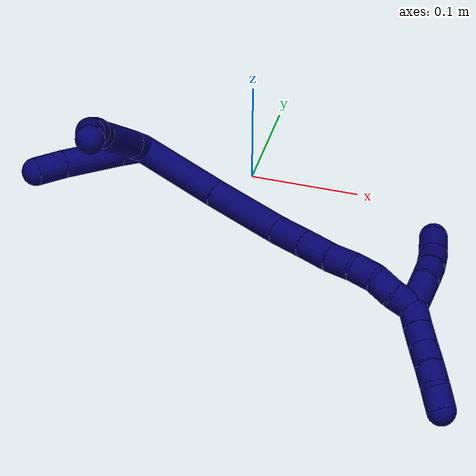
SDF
<sdf version="1.7">
 <world name="default">
  <model name="7">
   <static>0</static>
   <link name="7">
    <collision name="collision-cylinder-e_1_2_8">
     <pose>0.002628 -0.001179 0.012652 0.092919 0.203932 0.009514</pose>
     <geometry><cylinder><radius>0.0125</radius><length>0.025951</length></cylinder></geometry>
     <surface>
      <friction><ode><mu>1.16</mu><mu2>1.16</mu2><slip1>0</slip1><slip2>0</slip2></ode></friction>
      <contact><ode><kp>1e+06</kp><kd>1</kd><max_vel>0</max_vel><min_depth>0.001</min_depth></ode></contact>
     </surface>
    </collision>
    <visual name="visual-cylinder-e_1_2_8">
     <pose>0.002628 -0.001179 0.012652 0.092919 0.203932 0.009514</pose>
     <geometry><cylinder><radius>0.0125</radius><length>0.025951</length></cylinder></geometry>
     <material><ambient>0.003922 0 0.403922 1</ambient></material>
    </visual>
    <collision name="collision-cylinder-e_2_8_9">
     <pose>0.009874 -0.00553 0.0538 0.110856 0.159695 0.008879</pose>
     <geometry><cylinder><radius>0.0125</radius><length>0.058084</length></cylinder></geometry>
     <surface>
      <friction><ode><mu>1.16</mu><mu2>1.16</mu2><slip1>0</slip1><slip2>0</slip2></ode></friction>
      <contact><ode><kp>1e+06</kp><kd>1</kd><max_vel>0</max_vel><min_depth>0.001</min_depth></ode></contact>
     </surface>
    </collision>
    <visual name="visual-cylinder-e_2_8_9">
     <pose>0.009874 -0.00553 0.0538 0.110856 0.159695 0.008879</pose>
     <geometry><cylinder><radius>0.0125</radius><length>0.058084</length></cylinder></geometry>
     <material><ambient>0.003922 0 0.403922 1</ambient></material>
    </visual>
    <collision name="collision-cylinder-e_3_9_10">
     <pose>0.018879 -0.009656 0.091929 0.098713 0.42557 0.021344</pose>
     <geometry><cylinder><radius>0.0125</radius><length>0.021255</length></cylinder></geometry>
     <surface>
      <friction><ode><mu>1.16</mu><mu2>1.16</mu2><slip1>0</slip1><slip2>0</slip2></ode></friction>
      <contact><ode><kp>1e+06</kp><kd>1</kd><max_vel>0</max_vel><min_depth>0.001</min_depth></ode></contact>
     </surface>
    </collision>
    <visual name="visual-cylinder-e_3_9_10">
     <pose>0.018879 -0.009656 0.091929 0.098713 0.42557 0.021344</pose>
     <geometry><cylinder><radius>0.0125</radius><length>0.021255</length></cylinder></geometry>
     <material><ambient>0.003922 0 0.403922 1</ambient></material>
    </visual>
    <collision name="collision-cylinder-e_4_10_11">
     <pose>0.027761 -0.012919 0.111178 0.235604 0.426521 0.051247</pose>
     <geometry><cylinder><radius>0.0125</radius><length>0.021728</length></cylinder></geometry>
     <surface>
      <friction><ode><mu>1.16</mu><mu2>1.16</mu2><slip1>0</slip1><slip2>0</slip2></ode></friction>
      <contact><ode><kp>1e+06</kp><kd>1</kd><max_vel>0</max_vel><min_depth>0.001</min_depth></ode></contact>
     </surface>
    </collision>
    <visual name="visual-cylinder-e_4_10_11">
     <pose>0.027761 -0.012919 0.111178 0.235604 0.426521 0.051247</pose>
     <geometry><cylinder><radius>0.0125</radius><length>0.021728</length></cylinder></geometry>
     <material><ambient>0.003922 0 0.403922 1</ambient></material>
    </visual>
    <collision name="collision-cylinder-e_5_11_6">
     <pose>0.039106 -0.020001 0.128692 0.54375 0.638637 0.183827</pose>
     <geometry><cylinder><radius>0.0125</radius><length>0.022982</length></cylinder></geometry>
     <surface>
      <friction><ode><mu>1.16</mu><mu2>1.16</mu2><slip1>0</slip1><slip2>0</slip2></ode></friction>
      <contact><ode><kp>1e+06</kp><kd>1</kd><max_vel>0</max_vel><min_depth>0.001</min_depth></ode></contact>
     </surface>
    </collision>
    <visual name="visual-cylinder-e_5_11_6">
     <pose>0.039106 -0.020001 0.128692 0.54375 0.638637 0.183827</pose>
     <geometry><cylinder><radius>0.0125</radius><length>0.022982</length></cylinder></geometry>
     <material><ambient>0.003922 0 0.403922 1</ambient></material>
    </visual>
    <collision name="collision-cylinder-e_1_2_12">
     <pose>-0.006102 -0.004435 0.007813 0.516281 -0.596611 -0.162014</pose>
     <geometry><cylinder><radius>0.0125</radius><length>0.02172</length></cylinder></geometry>
     <surface>
      <friction><ode><mu>1.16</mu><mu2>1.16</mu2><slip1>0</slip1><slip2>0</slip2></ode></friction>
      <contact><ode><kp>1e+06</kp><kd>1</kd><max_vel>0</max_vel><min_depth>0.001</min_depth></ode></contact>
     </surface>
    </collision>
    <visual name="visual-cylinder-e_1_2_12">
     <pose>-0.006102 -0.004435 0.007813 0.516281 -0.596611 -0.162014</pose>
     <geometry><cylinder><radius>0.0125</radius><length>0.02172</length></cylinder></geometry>
     <material><ambient>0.003922 0 0.403922 1</ambient></material>
    </visual>
    <collision name="collision-cylinder-e_2_12_13">
     <pose>-0.027405 -0.020312 0.033162 0.578136 -0.627977 -0.192552</pose>
     <geometry><cylinder><radius>0.0125</radius><length>0.051752</length></cylinder></geometry>
     <surface>
      <friction><ode><mu>1.16</mu><mu2>1.16</mu2><slip1>0</slip1><slip2>0</slip2></ode></friction>
      <contact><ode><kp>1e+06</kp><kd>1</kd><max_vel>0</max_vel><min_depth>0.001</min_depth></ode></contact>
     </surface>
    </collision>
    <visual name="visual-cylinder-e_2_12_13">
     <pose>-0.027405 -0.020312 0.033162 0.578136 -0.627977 -0.192552</pose>
     <geometry><cylinder><radius>0.0125</radius><length>0.051752</length></cylinder></geometry>
     <material><ambient>0.003922 0 0.403922 1</ambient></material>
    </visual>
    <collision name="collision-cylinder-e_3_13_5">
     <pose>-0.049649 -0.03825 0.059873 0.616083 -0.559564 -0.182325</pose>
     <geometry><cylinder><radius>0.0125</radius><length>0.026529</length></cylinder></geometry>
     <surface>
      <friction><ode><mu>1.16</mu><mu2>1.16</mu2><slip1>0</slip1><slip2>0</slip2></ode></friction>
      <contact><ode><kp>1e+06</kp><kd>1</kd><max_vel>0</max_vel><min_depth>0.001</min_depth></ode></contact>
     </surface>
    </collision>
    <visual name="visual-cylinder-e_3_13_5">
     <pose>-0.049649 -0.03825 0.059873 0.616083 -0.559564 -0.182325</pose>
     <geometry><cylinder><radius>0.0125</radius><length>0.026529</length></cylinder></geometry>
     <material><ambient>0.003922 0 0.403922 1</ambient></material>
    </visual>
    <collision name="collision-cylinder-e_1_2_14">
     <pose>0.040327 -0.015566 -0.005729 1.92348 1.18059 1.53053</pose>
     <geometry><cylinder><radius>0.0125</radius><length>0.087209</length></cylinder></geometry>
     <surface>
      <friction><ode><mu>1.16</mu><mu2>1.16</mu2><slip1>0</slip1><slip2>0</slip2></ode></friction>
      <contact><ode><kp>1e+06</kp><kd>1</kd><max_vel>0</max_vel><min_depth>0.001</min_depth></ode></contact>
     </surface>
    </collision>
    <visual name="visual-cylinder-e_1_2_14">
     <pose>0.040327 -0.015566 -0.005729 1.92348 1.18059 1.53053</pose>
     <geometry><cylinder><radius>0.0125</radius><length>0.087209</length></cylinder></geometry>
     <material><ambient>0.003922 0 0.403922 1</ambient></material>
    </visual>
    <collision name="collision-cylinder-e_2_14_15">
     <pose>0.112539 -0.042748 -0.01695 2.01237 1.18772 1.63462</pose>
     <geometry><cylinder><radius>0.0125</radius><length>0.068753</length></cylinder></geometry>
     <surface>
      <friction><ode><mu>1.16</mu><mu2>1.16</mu2><slip1>0</slip1><slip2>0</slip2></ode></friction>
      <contact><ode><kp>1e+06</kp><kd>1</kd><max_vel>0</max_vel><min_depth>0.001</min_depth></ode></contact>
     </surface>
    </collision>
    <visual name="visual-cylinder-e_2_14_15">
     <pose>0.112539 -0.042748 -0.01695 2.01237 1.18772 1.63462</pose>
     <geometry><cylinder><radius>0.0125</radius><length>0.068753</length></cylinder></geometry>
     <material><ambient>0.003922 0 0.403922 1</ambient></material>
    </visual>
    <collision name="collision-cylinder-e_3_15_16">
     <pose>0.159105 -0.0588 -0.022618 1.61081 1.27718 1.31571</pose>
     <geometry><cylinder><radius>0.0125</radius><length>0.030677</length></cylinder></geometry>
     <surface>
      <friction><ode><mu>1.16</mu><mu2>1.16</mu2><slip1>0</slip1><slip2>0</slip2></ode></friction>
      <contact><ode><kp>1e+06</kp><kd>1</kd><max_vel>0</max_vel><min_depth>0.001</min_depth></ode></contact>
     </surface>
    </collision>
    <visual name="visual-cylinder-e_3_15_16">
     <pose>0.159105 -0.0588 -0.022618 1.61081 1.27718 1.31571</pose>
     <geometry><cylinder><radius>0.0125</radius><length>0.030677</length></cylinder></geometry>
     <material><ambient>0.003922 0 0.403922 1</ambient></material>
    </visual>
    <collision name="collision-cylinder-e_4_16_17">
     <pose>0.187555 -0.067601 -0.023241 1.67229 1.26227 1.36049</pose>
     <geometry><cylinder><radius>0.0125</radius><length>0.028899</length></cylinder></geometry>
     <surface>
      <friction><ode><mu>1.16</mu><mu2>1.16</mu2><slip1>0</slip1><slip2>0</slip2></ode></friction>
      <contact><ode><kp>1e+06</kp><kd>1</kd><max_vel>0</max_vel><min_depth>0.001</min_depth></ode></contact>
     </surface>
    </collision>
    <visual name="visual-cylinder-e_4_16_17">
     <pose>0.187555 -0.067601 -0.023241 1.67229 1.26227 1.36049</pose>
     <geometry><cylinder><radius>0.0125</radius><length>0.028899</length></cylinder></geometry>
     <material><ambient>0.003922 0 0.403922 1</ambient></material>
    </visual>
    <collision name="collision-cylinder-e_5_17_18">
     <pose>0.212716 -0.074399 -0.02436 1.84136 1.3527 1.62485</pose>
     <geometry><cylinder><radius>0.0125</radius><length>0.023341</length></cylinder></geometry>
     <surface>
      <friction><ode><mu>1.16</mu><mu2>1.16</mu2><slip1>0</slip1><slip2>0</slip2></ode></friction>
      <contact><ode><kp>1e+06</kp><kd>1</kd><max_vel>0</max_vel><min_depth>0.001</min_depth></ode></contact>
     </surface>
    </collision>
    <visual name="visual-cylinder-e_5_17_18">
     <pose>0.212716 -0.074399 -0.02436 1.84136 1.3527 1.62485</pose>
     <geometry><cylinder><radius>0.0125</radius><length>0.023341</length></cylinder></geometry>
     <material><ambient>0.003922 0 0.403922 1</ambient></material>
    </visual>
    <collision name="collision-cylinder-e_6_18_19">
     <pose>0.233737 -0.079924 -0.027842 2.30787 1.1615 1.9544</pose>
     <geometry><cylinder><radius>0.0125</radius><length>0.020988</length></cylinder></geometry>
     <surface>
      <friction><ode><mu>1.16</mu><mu2>1.16</mu2><slip1>0</slip1><slip2>0</slip2></ode></friction>
      <contact><ode><kp>1e+06</kp><kd>1</kd><max_vel>0</max_vel><min_depth>0.001</min_depth></ode></contact>
     </surface>
    </collision>
    <visual name="visual-cylinder-e_6_18_19">
     <pose>0.233737 -0.079924 -0.027842 2.30787 1.1615 1.9544</pose>
     <geometry><cylinder><radius>0.0125</radius><length>0.020988</length></cylinder></geometry>
     <material><ambient>0.003922 0 0.403922 1</ambient></material>
    </visual>
    <collision name="collision-cylinder-e_7_19_20">
     <pose>0.251064 -0.088136 -0.034575 2.22497 0.873386 1.5154</pose>
     <geometry><cylinder><radius>0.0125</radius><length>0.02009</length></cylinder></geometry>
     <surface>
      <friction><ode><mu>1.16</mu><mu2>1.16</mu2><slip1>0</slip1><slip2>0</slip2></ode></friction>
      <contact><ode><kp>1e+06</kp><kd>1</kd><max_vel>0</max_vel><min_depth>0.001</min_depth></ode></contact>
     </surface>
    </collision>
    <visual name="visual-cylinder-e_7_19_20">
     <pose>0.251064 -0.088136 -0.034575 2.22497 0.873386 1.5154</pose>
     <geometry><cylinder><radius>0.0125</radius><length>0.02009</length></cylinder></geometry>
     <material><ambient>0.003922 0 0.403922 1</ambient></material>
    </visual>
    <collision name="collision-cylinder-e_8_20_1">
     <pose>0.266571 -0.096948 -0.043583 2.51336 0.893166 1.94937</pose>
     <geometry><cylinder><radius>0.0125</radius><length>0.020043</length></cylinder></geometry>
     <surface>
      <friction><ode><mu>1.16</mu><mu2>1.16</mu2><slip1>0</slip1><slip2>0</slip2></ode></friction>
      <contact><ode><kp>1e+06</kp><kd>1</kd><max_vel>0</max_vel><min_depth>0.001</min_depth></ode></contact>
     </surface>
    </collision>
    <visual name="visual-cylinder-e_8_20_1">
     <pose>0.266571 -0.096948 -0.043583 2.51336 0.893166 1.94937</pose>
     <geometry><cylinder><radius>0.0125</radius><length>0.020043</length></cylinder></geometry>
     <material><ambient>0.003922 0 0.403922 1</ambient></material>
    </visual>
    <collision name="collision-cylinder-e_1_1_21">
     <pose>0.272618 -0.087435 -0.057517 -2.16125 -0.11029 0.206164</pose>
     <geometry><cylinder><radius>0.0125</radius><length>0.031989</length></cylinder></geometry>
     <surface>
      <friction><ode><mu>1.16</mu><mu2>1.16</mu2><slip1>0</slip1><slip2>0</slip2></ode></friction>
      <contact><ode><kp>1e+06</kp><kd>1</kd><max_vel>0</max_vel><min_depth>0.001</min_depth></ode></contact>
     </surface>
    </collision>
    <visual name="visual-cylinder-e_1_1_21">
     <pose>0.272618 -0.087435 -0.057517 -2.16125 -0.11029 0.206164</pose>
     <geometry><cylinder><radius>0.0125</radius><length>0.031989</length></cylinder></geometry>
     <material><ambient>0.003922 0 0.403922 1</ambient></material>
    </visual>
    <collision name="collision-cylinder-e_2_21_22">
     <pose>0.268452 -0.067166 -0.073327 -2.34882 -0.238017 0.556556</pose>
     <geometry><cylinder><radius>0.0125</radius><length>0.020406</length></cylinder></geometry>
     <surface>
      <friction><ode><mu>1.16</mu><mu2>1.16</mu2><slip1>0</slip1><slip2>0</slip2></ode></friction>
      <contact><ode><kp>1e+06</kp><kd>1</kd><max_vel>0</max_vel><min_depth>0.001</min_depth></ode></contact>
     </surface>
    </collision>
    <visual name="visual-cylinder-e_2_21_22">
     <pose>0.268452 -0.067166 -0.073327 -2.34882 -0.238017 0.556556</pose>
     <geometry><cylinder><radius>0.0125</radius><length>0.020406</length></cylinder></geometry>
     <material><ambient>0.003922 0 0.403922 1</ambient></material>
    </visual>
    <collision name="collision-cylinder-e_3_22_23">
     <pose>0.26155 -0.053225 -0.088525 -2.44588 -0.396694 1.01228</pose>
     <geometry><cylinder><radius>0.0125</radius><length>0.023273</length></cylinder></geometry>
     <surface>
      <friction><ode><mu>1.16</mu><mu2>1.16</mu2><slip1>0</slip1><slip2>0</slip2></ode></friction>
      <contact><ode><kp>1e+06</kp><kd>1</kd><max_vel>0</max_vel><min_depth>0.001</min_depth></ode></contact>
     </surface>
    </collision>
    <visual name="visual-cylinder-e_3_22_23">
     <pose>0.26155 -0.053225 -0.088525 -2.44588 -0.396694 1.01228</pose>
     <geometry><cylinder><radius>0.0125</radius><length>0.023273</length></cylinder></geometry>
     <material><ambient>0.003922 0 0.403922 1</ambient></material>
    </visual>
    <collision name="collision-cylinder-e_4_23_4">
     <pose>0.251739 -0.037743 -0.103527 -2.23706 -0.45214 0.88428</pose>
     <geometry><cylinder><radius>0.0125</radius><length>0.024332</length></cylinder></geometry>
     <surface>
      <friction><ode><mu>1.16</mu><mu2>1.16</mu2><slip1>0</slip1><slip2>0</slip2></ode></friction>
      <contact><ode><kp>1e+06</kp><kd>1</kd><max_vel>0</max_vel><min_depth>0.001</min_depth></ode></contact>
     </surface>
    </collision>
    <visual name="visual-cylinder-e_4_23_4">
     <pose>0.251739 -0.037743 -0.103527 -2.23706 -0.45214 0.88428</pose>
     <geometry><cylinder><radius>0.0125</radius><length>0.024332</length></cylinder></geometry>
     <material><ambient>0.003922 0 0.403922 1</ambient></material>
    </visual>
    <collision name="collision-cylinder-e_1_1_24">
     <pose>0.279593 -0.109028 -0.047099 1.38603 0.548579 0.459092</pose>
     <geometry><cylinder><radius>0.0125</radius><length>0.02</length></cylinder></geometry>
     <surface>
      <friction><ode><mu>1.16</mu><mu2>1.16</mu2><slip1>0</slip1><slip2>0</slip2></ode></friction>
      <contact><ode><kp>1e+06</kp><kd>1</kd><max_vel>0</max_vel><min_depth>0.001</min_depth></ode></contact>
     </surface>
    </collision>
    <visual name="visual-cylinder-e_1_1_24">
     <pose>0.279593 -0.109028 -0.047099 1.38603 0.548579 0.459092</pose>
     <geometry><cylinder><radius>0.0125</radius><length>0.02</length></cylinder></geometry>
     <material><ambient>0.003922 0 0.403922 1</ambient></material>
    </visual>
    <collision name="collision-cylinder-e_2_24_25">
     <pose>0.290361 -0.125517 -0.043654 1.34308 0.588783 0.472932</pose>
     <geometry><cylinder><radius>0.0125</radius><length>0.02</length></cylinder></geometry>
     <surface>
      <friction><ode><mu>1.16</mu><mu2>1.16</mu2><slip1>0</slip1><slip2>0</slip2></ode></friction>
      <contact><ode><kp>1e+06</kp><kd>1</kd><max_vel>0</max_vel><min_depth>0.001</min_depth></ode></contact>
     </surface>
    </collision>
    <visual name="visual-cylinder-e_2_24_25">
     <pose>0.290361 -0.125517 -0.043654 1.34308 0.588783 0.472932</pose>
     <geometry><cylinder><radius>0.0125</radius><length>0.02</length></cylinder></geometry>
     <material><ambient>0.003922 0 0.403922 1</ambient></material>
    </visual>
    <collision name="collision-cylinder-e_3_25_26">
     <pose>0.301761 -0.141318 -0.039218 1.24993 0.624421 0.457555</pose>
     <geometry><cylinder><radius>0.0125</radius><length>0.02</length></cylinder></geometry>
     <surface>
      <friction><ode><mu>1.16</mu><mu2>1.16</mu2><slip1>0</slip1><slip2>0</slip2></ode></friction>
      <contact><ode><kp>1e+06</kp><kd>1</kd><max_vel>0</max_vel><min_depth>0.001</min_depth></ode></contact>
     </surface>
    </collision>
    <visual name="visual-cylinder-e_3_25_26">
     <pose>0.301761 -0.141318 -0.039218 1.24993 0.624421 0.457555</pose>
     <geometry><cylinder><radius>0.0125</radius><length>0.02</length></cylinder></geometry>
     <material><ambient>0.003922 0 0.403922 1</ambient></material>
    </visual>
    <collision name="collision-cylinder-e_4_26_27">
     <pose>0.313066 -0.157188 -0.03481 1.34824 0.577457 0.466021</pose>
     <geometry><cylinder><radius>0.0125</radius><length>0.02</length></cylinder></geometry>
     <surface>
      <friction><ode><mu>1.16</mu><mu2>1.16</mu2><slip1>0</slip1><slip2>0</slip2></ode></friction>
      <contact><ode><kp>1e+06</kp><kd>1</kd><max_vel>0</max_vel><min_depth>0.001</min_depth></ode></contact>
     </surface>
    </collision>
    <visual name="visual-cylinder-e_4_26_27">
     <pose>0.313066 -0.157188 -0.03481 1.34824 0.577457 0.466021</pose>
     <geometry><cylinder><radius>0.0125</radius><length>0.02</length></cylinder></geometry>
     <material><ambient>0.003922 0 0.403922 1</ambient></material>
    </visual>
    <collision name="collision-cylinder-e_5_27_3">
     <pose>0.322814 -0.174319 -0.034118 1.69929 0.4433 0.501877</pose>
     <geometry><cylinder><radius>0.0125</radius><length>0.02</length></cylinder></geometry>
     <surface>
      <friction><ode><mu>1.16</mu><mu2>1.16</mu2><slip1>0</slip1><slip2>0</slip2></ode></friction>
      <contact><ode><kp>1e+06</kp><kd>1</kd><max_vel>0</max_vel><min_depth>0.001</min_depth></ode></contact>
     </surface>
    </collision>
    <visual name="visual-cylinder-e_5_27_3">
     <pose>0.322814 -0.174319 -0.034118 1.69929 0.4433 0.501877</pose>
     <geometry><cylinder><radius>0.0125</radius><length>0.02</length></cylinder></geometry>
     <material><ambient>0.003922 0 0.403922 1</ambient></material>
    </visual>
    <collision name="collision-sphere-3">
     <pose>0.327104 -0.183278 -0.035276 0 -0 0</pose>
     <geometry><sphere><radius>0.0125</radius></sphere></geometry>
     <surface>
      <friction><ode><mu>1.16</mu><mu2>1.16</mu2><slip1>0</slip1><slip2>0</slip2></ode></friction>
      <contact><ode><kp>1e+06</kp><kd>1</kd><max_vel>0</max_vel><min_depth>0.001</min_depth></ode></contact>
     </surface>
    </collision>
    <visual name="visual-sphere-3">
     <pose>0.327104 -0.183278 -0.035276 0 -0 0</pose>
     <geometry><sphere><radius>0.0125</radius></sphere></geometry>
     <material><ambient>0.003922 0 0.403922 1</ambient></material>
    </visual>
    <collision name="collision-sphere-27">
     <pose>0.318525 -0.16536 -0.032961 0 -0 0</pose>
     <geometry><sphere><radius>0.0125</radius></sphere></geometry>
     <surface>
      <friction><ode><mu>1.16</mu><mu2>1.16</mu2><slip1>0</slip1><slip2>0</slip2></ode></friction>
      <contact><ode><kp>1e+06</kp><kd>1</kd><max_vel>0</max_vel><min_depth>0.001</min_depth></ode></contact>
     </surface>
    </collision>
    <visual name="visual-sphere-27">
     <pose>0.318525 -0.16536 -0.032961 0 -0 0</pose>
     <geometry><sphere><radius>0.0125</radius></sphere></geometry>
     <material><ambient>0.003922 0 0.403922 1</ambient></material>
    </visual>
    <collision name="collision-sphere-26">
     <pose>0.307607 -0.149016 -0.036659 0 -0 0</pose>
     <geometry><sphere><radius>0.0125</radius></sphere></geometry>
     <surface>
      <friction><ode><mu>1.16</mu><mu2>1.16</mu2><slip1>0</slip1><slip2>0</slip2></ode></friction>
      <contact><ode><kp>1e+06</kp><kd>1</kd><max_vel>0</max_vel><min_depth>0.001</min_depth></ode></contact>
     </surface>
    </collision>
    <visual name="visual-sphere-26">
     <pose>0.307607 -0.149016 -0.036659 0 -0 0</pose>
     <geometry><sphere><radius>0.0125</radius></sphere></geometry>
     <material><ambient>0.003922 0 0.403922 1</ambient></material>
    </visual>
    <collision name="collision-sphere-25">
     <pose>0.295915 -0.133619 -0.041777 0 -0 0</pose>
     <geometry><sphere><radius>0.0125</radius></sphere></geometry>
     <surface>
      <friction><ode><mu>1.16</mu><mu2>1.16</mu2><slip1>0</slip1><slip2>0</slip2></ode></friction>
      <contact><ode><kp>1e+06</kp><kd>1</kd><max_vel>0</max_vel><min_depth>0.001</min_depth></ode></contact>
     </surface>
    </collision>
    <visual name="visual-sphere-25">
     <pose>0.295915 -0.133619 -0.041777 0 -0 0</pose>
     <geometry><sphere><radius>0.0125</radius></sphere></geometry>
     <material><ambient>0.003922 0 0.403922 1</ambient></material>
    </visual>
    <collision name="collision-sphere-24">
     <pose>0.284808 -0.117416 -0.045532 0 -0 0</pose>
     <geometry><sphere><radius>0.0125</radius></sphere></geometry>
     <surface>
      <friction><ode><mu>1.16</mu><mu2>1.16</mu2><slip1>0</slip1><slip2>0</slip2></ode></friction>
      <contact><ode><kp>1e+06</kp><kd>1</kd><max_vel>0</max_vel><min_depth>0.001</min_depth></ode></contact>
     </surface>
    </collision>
    <visual name="visual-sphere-24">
     <pose>0.284808 -0.117416 -0.045532 0 -0 0</pose>
     <geometry><sphere><radius>0.0125</radius></sphere></geometry>
     <material><ambient>0.003922 0 0.403922 1</ambient></material>
    </visual>
    <collision name="collision-sphere-4">
     <pose>0.246424 -0.02914 -0.110291 0 -0 0</pose>
     <geometry><sphere><radius>0.0125</radius></sphere></geometry>
     <surface>
      <friction><ode><mu>1.16</mu><mu2>1.16</mu2><slip1>0</slip1><slip2>0</slip2></ode></friction>
      <contact><ode><kp>1e+06</kp><kd>1</kd><max_vel>0</max_vel><min_depth>0.001</min_depth></ode></contact>
     </surface>
    </collision>
    <visual name="visual-sphere-4">
     <pose>0.246424 -0.02914 -0.110291 0 -0 0</pose>
     <geometry><sphere><radius>0.0125</radius></sphere></geometry>
     <material><ambient>0.003922 0 0.403922 1</ambient></material>
    </visual>
    <collision name="collision-sphere-23">
     <pose>0.257054 -0.046346 -0.096764 0 -0 0</pose>
     <geometry><sphere><radius>0.0125</radius></sphere></geometry>
     <surface>
      <friction><ode><mu>1.16</mu><mu2>1.16</mu2><slip1>0</slip1><slip2>0</slip2></ode></friction>
      <contact><ode><kp>1e+06</kp><kd>1</kd><max_vel>0</max_vel><min_depth>0.001</min_depth></ode></contact>
     </surface>
    </collision>
    <visual name="visual-sphere-23">
     <pose>0.257054 -0.046346 -0.096764 0 -0 0</pose>
     <geometry><sphere><radius>0.0125</radius></sphere></geometry>
     <material><ambient>0.003922 0 0.403922 1</ambient></material>
    </visual>
    <collision name="collision-sphere-22">
     <pose>0.266046 -0.060104 -0.080287 0 -0 0</pose>
     <geometry><sphere><radius>0.0125</radius></sphere></geometry>
     <surface>
      <friction><ode><mu>1.16</mu><mu2>1.16</mu2><slip1>0</slip1><slip2>0</slip2></ode></friction>
      <contact><ode><kp>1e+06</kp><kd>1</kd><max_vel>0</max_vel><min_depth>0.001</min_depth></ode></contact>
     </surface>
    </collision>
    <visual name="visual-sphere-22">
     <pose>0.266046 -0.060104 -0.080287 0 -0 0</pose>
     <geometry><sphere><radius>0.0125</radius></sphere></geometry>
     <material><ambient>0.003922 0 0.403922 1</ambient></material>
    </visual>
    <collision name="collision-sphere-21">
     <pose>0.270857 -0.074229 -0.066368 0 -0 0</pose>
     <geometry><sphere><radius>0.0125</radius></sphere></geometry>
     <surface>
      <friction><ode><mu>1.16</mu><mu2>1.16</mu2><slip1>0</slip1><slip2>0</slip2></ode></friction>
      <contact><ode><kp>1e+06</kp><kd>1</kd><max_vel>0</max_vel><min_depth>0.001</min_depth></ode></contact>
     </surface>
    </collision>
    <visual name="visual-sphere-21">
     <pose>0.270857 -0.074229 -0.066368 0 -0 0</pose>
     <geometry><sphere><radius>0.0125</radius></sphere></geometry>
     <material><ambient>0.003922 0 0.403922 1</ambient></material>
    </visual>
    <collision name="collision-sphere-1">
     <pose>0.274378 -0.100641 -0.048667 0 -0 0</pose>
     <geometry><sphere><radius>0.0125</radius></sphere></geometry>
     <surface>
      <friction><ode><mu>1.16</mu><mu2>1.16</mu2><slip1>0</slip1><slip2>0</slip2></ode></friction>
      <contact><ode><kp>1e+06</kp><kd>1</kd><max_vel>0</max_vel><min_depth>0.001</min_depth></ode></contact>
     </surface>
    </collision>
    <visual name="visual-sphere-1">
     <pose>0.274378 -0.100641 -0.048667 0 -0 0</pose>
     <geometry><sphere><radius>0.0125</radius></sphere></geometry>
     <material><ambient>0.003922 0 0.403922 1</ambient></material>
    </visual>
    <collision name="collision-sphere-6">
     <pose>0.045956 -0.024774 0.136587 0 -0 0</pose>
     <geometry><sphere><radius>0.0125</radius></sphere></geometry>
     <surface>
      <friction><ode><mu>1.16</mu><mu2>1.16</mu2><slip1>0</slip1><slip2>0</slip2></ode></friction>
      <contact><ode><kp>1e+06</kp><kd>1</kd><max_vel>0</max_vel><min_depth>0.001</min_depth></ode></contact>
     </surface>
    </collision>
    <visual name="visual-sphere-6">
     <pose>0.045956 -0.024774 0.136587 0 -0 0</pose>
     <geometry><sphere><radius>0.0125</radius></sphere></geometry>
     <material><ambient>0.003922 0 0.403922 1</ambient></material>
    </visual>
    <collision name="collision-sphere-11">
     <pose>0.032256 -0.015227 0.120796 0 -0 0</pose>
     <geometry><sphere><radius>0.0125</radius></sphere></geometry>
     <surface>
      <friction><ode><mu>1.16</mu><mu2>1.16</mu2><slip1>0</slip1><slip2>0</slip2></ode></friction>
      <contact><ode><kp>1e+06</kp><kd>1</kd><max_vel>0</max_vel><min_depth>0.001</min_depth></ode></contact>
     </surface>
    </collision>
    <visual name="visual-sphere-11">
     <pose>0.032256 -0.015227 0.120796 0 -0 0</pose>
     <geometry><sphere><radius>0.0125</radius></sphere></geometry>
     <material><ambient>0.003922 0 0.403922 1</ambient></material>
    </visual>
    <collision name="collision-sphere-10">
     <pose>0.023267 -0.01061 0.101561 0 -0 0</pose>
     <geometry><sphere><radius>0.0125</radius></sphere></geometry>
     <surface>
      <friction><ode><mu>1.16</mu><mu2>1.16</mu2><slip1>0</slip1><slip2>0</slip2></ode></friction>
      <contact><ode><kp>1e+06</kp><kd>1</kd><max_vel>0</max_vel><min_depth>0.001</min_depth></ode></contact>
     </surface>
    </collision>
    <visual name="visual-sphere-10">
     <pose>0.023267 -0.01061 0.101561 0 -0 0</pose>
     <geometry><sphere><radius>0.0125</radius></sphere></geometry>
     <material><ambient>0.003922 0 0.403922 1</ambient></material>
    </visual>
    <collision name="collision-sphere-9">
     <pose>0.014492 -0.008702 0.082296 0 -0 0</pose>
     <geometry><sphere><radius>0.0125</radius></sphere></geometry>
     <surface>
      <friction><ode><mu>1.16</mu><mu2>1.16</mu2><slip1>0</slip1><slip2>0</slip2></ode></friction>
      <contact><ode><kp>1e+06</kp><kd>1</kd><max_vel>0</max_vel><min_depth>0.001</min_depth></ode></contact>
     </surface>
    </collision>
    <visual name="visual-sphere-9">
     <pose>0.014492 -0.008702 0.082296 0 -0 0</pose>
     <geometry><sphere><radius>0.0125</radius></sphere></geometry>
     <material><ambient>0.003922 0 0.403922 1</ambient></material>
    </visual>
    <collision name="collision-sphere-2">
     <geometry><sphere><radius>0.0125</radius></sphere></geometry>
     <surface>
      <friction><ode><mu>1.16</mu><mu2>1.16</mu2><slip1>0</slip1><slip2>0</slip2></ode></friction>
      <contact><ode><kp>1e+06</kp><kd>1</kd><max_vel>0</max_vel><min_depth>0.001</min_depth></ode></contact>
     </surface>
    </collision>
    <visual name="visual-sphere-2">
     <geometry><sphere><radius>0.0125</radius></sphere></geometry>
     <material><ambient>0.003922 0 0.403922 1</ambient></material>
    </visual>
    <collision name="collision-sphere-19">
     <pose>0.243364 -0.083017 -0.030649 0 -0 0</pose>
     <geometry><sphere><radius>0.0125</radius></sphere></geometry>
     <surface>
      <friction><ode><mu>1.16</mu><mu2>1.16</mu2><slip1>0</slip1><slip2>0</slip2></ode></friction>
      <contact><ode><kp>1e+06</kp><kd>1</kd><max_vel>0</max_vel><min_depth>0.001</min_depth></ode></contact>
     </surface>
    </collision>
    <visual name="visual-sphere-19">
     <pose>0.243364 -0.083017 -0.030649 0 -0 0</pose>
     <geometry><sphere><radius>0.0125</radius></sphere></geometry>
     <material><ambient>0.003922 0 0.403922 1</ambient></material>
    </visual>
    <collision name="collision-sphere-8">
     <pose>0.005256 -0.002358 0.025303 0 -0 0</pose>
     <geometry><sphere><radius>0.0125</radius></sphere></geometry>
     <surface>
      <friction><ode><mu>1.16</mu><mu2>1.16</mu2><slip1>0</slip1><slip2>0</slip2></ode></friction>
      <contact><ode><kp>1e+06</kp><kd>1</kd><max_vel>0</max_vel><min_depth>0.001</min_depth></ode></contact>
     </surface>
    </collision>
    <visual name="visual-sphere-8">
     <pose>0.005256 -0.002358 0.025303 0 -0 0</pose>
     <geometry><sphere><radius>0.0125</radius></sphere></geometry>
     <material><ambient>0.003922 0 0.403922 1</ambient></material>
    </visual>
    <collision name="collision-sphere-12">
     <pose>-0.012203 -0.00887 0.015626 0 -0 0</pose>
     <geometry><sphere><radius>0.0125</radius></sphere></geometry>
     <surface>
      <friction><ode><mu>1.16</mu><mu2>1.16</mu2><slip1>0</slip1><slip2>0</slip2></ode></friction>
      <contact><ode><kp>1e+06</kp><kd>1</kd><max_vel>0</max_vel><min_depth>0.001</min_depth></ode></contact>
     </surface>
    </collision>
    <visual name="visual-sphere-12">
     <pose>-0.012203 -0.00887 0.015626 0 -0 0</pose>
     <geometry><sphere><radius>0.0125</radius></sphere></geometry>
     <material><ambient>0.003922 0 0.403922 1</ambient></material>
    </visual>
    <collision name="collision-sphere-13">
     <pose>-0.042608 -0.031755 0.050698 0 -0 0</pose>
     <geometry><sphere><radius>0.0125</radius></sphere></geometry>
     <surface>
      <friction><ode><mu>1.16</mu><mu2>1.16</mu2><slip1>0</slip1><slip2>0</slip2></ode></friction>
      <contact><ode><kp>1e+06</kp><kd>1</kd><max_vel>0</max_vel><min_depth>0.001</min_depth></ode></contact>
     </surface>
    </collision>
    <visual name="visual-sphere-13">
     <pose>-0.042608 -0.031755 0.050698 0 -0 0</pose>
     <geometry><sphere><radius>0.0125</radius></sphere></geometry>
     <material><ambient>0.003922 0 0.403922 1</ambient></material>
    </visual>
    <collision name="collision-sphere-5">
     <pose>-0.056689 -0.044746 0.069047 0 -0 0</pose>
     <geometry><sphere><radius>0.0125</radius></sphere></geometry>
     <surface>
      <friction><ode><mu>1.16</mu><mu2>1.16</mu2><slip1>0</slip1><slip2>0</slip2></ode></friction>
      <contact><ode><kp>1e+06</kp><kd>1</kd><max_vel>0</max_vel><min_depth>0.001</min_depth></ode></contact>
     </surface>
    </collision>
    <visual name="visual-sphere-5">
     <pose>-0.056689 -0.044746 0.069047 0 -0 0</pose>
     <geometry><sphere><radius>0.0125</radius></sphere></geometry>
     <material><ambient>0.003922 0 0.403922 1</ambient></material>
    </visual>
    <collision name="collision-sphere-14">
     <pose>0.080654 -0.031131 -0.011458 0 -0 0</pose>
     <geometry><sphere><radius>0.0125</radius></sphere></geometry>
     <surface>
      <friction><ode><mu>1.16</mu><mu2>1.16</mu2><slip1>0</slip1><slip2>0</slip2></ode></friction>
      <contact><ode><kp>1e+06</kp><kd>1</kd><max_vel>0</max_vel><min_depth>0.001</min_depth></ode></contact>
     </surface>
    </collision>
    <visual name="visual-sphere-14">
     <pose>0.080654 -0.031131 -0.011458 0 -0 0</pose>
     <geometry><sphere><radius>0.0125</radius></sphere></geometry>
     <material><ambient>0.003922 0 0.403922 1</ambient></material>
    </visual>
    <collision name="collision-sphere-15">
     <pose>0.144423 -0.054364 -0.022441 0 -0 0</pose>
     <geometry><sphere><radius>0.0125</radius></sphere></geometry>
     <surface>
      <friction><ode><mu>1.16</mu><mu2>1.16</mu2><slip1>0</slip1><slip2>0</slip2></ode></friction>
      <contact><ode><kp>1e+06</kp><kd>1</kd><max_vel>0</max_vel><min_depth>0.001</min_depth></ode></contact>
     </surface>
    </collision>
    <visual name="visual-sphere-15">
     <pose>0.144423 -0.054364 -0.022441 0 -0 0</pose>
     <geometry><sphere><radius>0.0125</radius></sphere></geometry>
     <material><ambient>0.003922 0 0.403922 1</ambient></material>
    </visual>
    <collision name="collision-sphere-16">
     <pose>0.173787 -0.063236 -0.022796 0 -0 0</pose>
     <geometry><sphere><radius>0.0125</radius></sphere></geometry>
     <surface>
      <friction><ode><mu>1.16</mu><mu2>1.16</mu2><slip1>0</slip1><slip2>0</slip2></ode></friction>
      <contact><ode><kp>1e+06</kp><kd>1</kd><max_vel>0</max_vel><min_depth>0.001</min_depth></ode></contact>
     </surface>
    </collision>
    <visual name="visual-sphere-16">
     <pose>0.173787 -0.063236 -0.022796 0 -0 0</pose>
     <geometry><sphere><radius>0.0125</radius></sphere></geometry>
     <material><ambient>0.003922 0 0.403922 1</ambient></material>
    </visual>
    <collision name="collision-sphere-17">
     <pose>0.201322 -0.071966 -0.023685 0 -0 0</pose>
     <geometry><sphere><radius>0.0125</radius></sphere></geometry>
     <surface>
      <friction><ode><mu>1.16</mu><mu2>1.16</mu2><slip1>0</slip1><slip2>0</slip2></ode></friction>
      <contact><ode><kp>1e+06</kp><kd>1</kd><max_vel>0</max_vel><min_depth>0.001</min_depth></ode></contact>
     </surface>
    </collision>
    <visual name="visual-sphere-17">
     <pose>0.201322 -0.071966 -0.023685 0 -0 0</pose>
     <geometry><sphere><radius>0.0125</radius></sphere></geometry>
     <material><ambient>0.003922 0 0.403922 1</ambient></material>
    </visual>
    <collision name="collision-sphere-18">
     <pose>0.22411 -0.076832 -0.025035 0 -0 0</pose>
     <geometry><sphere><radius>0.0125</radius></sphere></geometry>
     <surface>
      <friction><ode><mu>1.16</mu><mu2>1.16</mu2><slip1>0</slip1><slip2>0</slip2></ode></friction>
      <contact><ode><kp>1e+06</kp><kd>1</kd><max_vel>0</max_vel><min_depth>0.001</min_depth></ode></contact>
     </surface>
    </collision>
    <visual name="visual-sphere-18">
     <pose>0.22411 -0.076832 -0.025035 0 -0 0</pose>
     <geometry><sphere><radius>0.0125</radius></sphere></geometry>
     <material><ambient>0.003922 0 0.403922 1</ambient></material>
    </visual>
    <collision name="collision-sphere-20">
     <pose>0.258764 -0.093256 -0.0385 0 -0 0</pose>
     <geometry><sphere><radius>0.0125</radius></sphere></geometry>
     <surface>
      <friction><ode><mu>1.16</mu><mu2>1.16</mu2><slip1>0</slip1><slip2>0</slip2></ode></friction>
      <contact><ode><kp>1e+06</kp><kd>1</kd><max_vel>0</max_vel><min_depth>0.001</min_depth></ode></contact>
     </surface>
    </collision>
    <visual name="visual-sphere-20">
     <pose>0.258764 -0.093256 -0.0385 0 -0 0</pose>
     <geometry><sphere><radius>0.0125</radius></sphere></geometry>
     <material><ambient>0.003922 0 0.403922 1</ambient></material>
    </visual>
    <inertial>
     <pose>0.130737 -0.052151 -0.00452 0 -0 0</pose>
     <mass>0.75</mass>
     <inertia>
      <ixx>0.000118</ixx>
      <ixy>0</ixy>
      <ixz>0</ixz>
      <iyy>0.000157</iyy>
      <iyz>0</iyz>
      <izz>-3.7e-05</izz>
     </inertia>
    </inertial>
   </link>
   <pose>-0.0811 -0.076869 0.072222 0.760356 -0.268248 -0.26056</pose>
  </model>
 </world>
</sdf>
